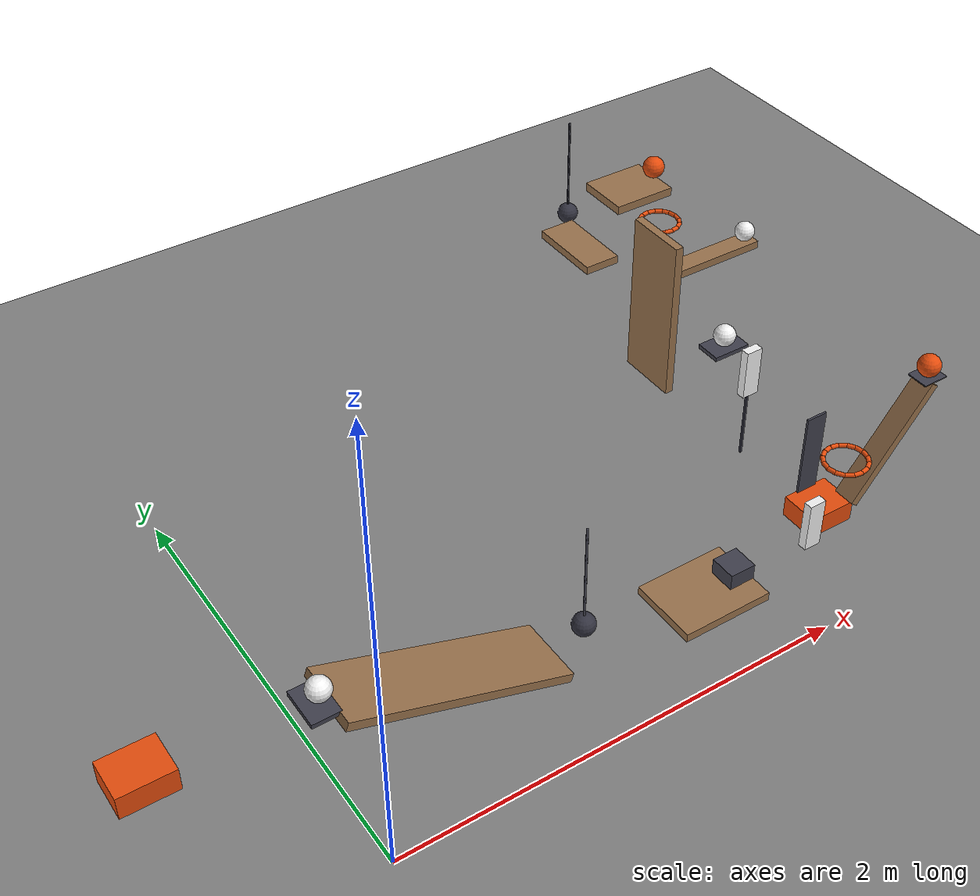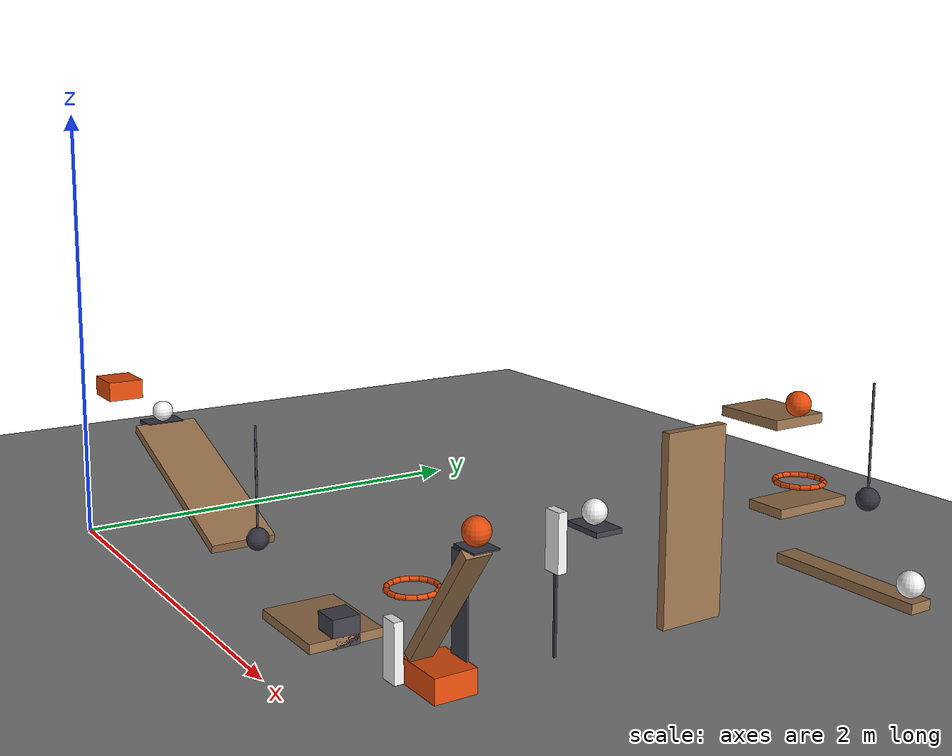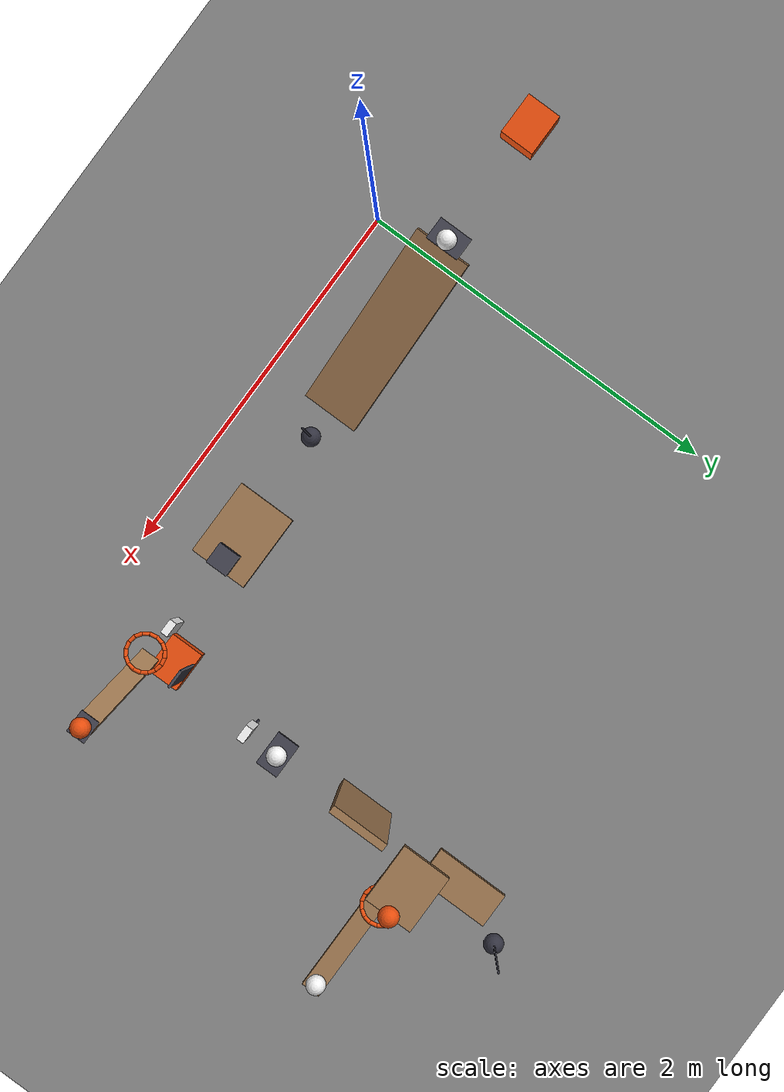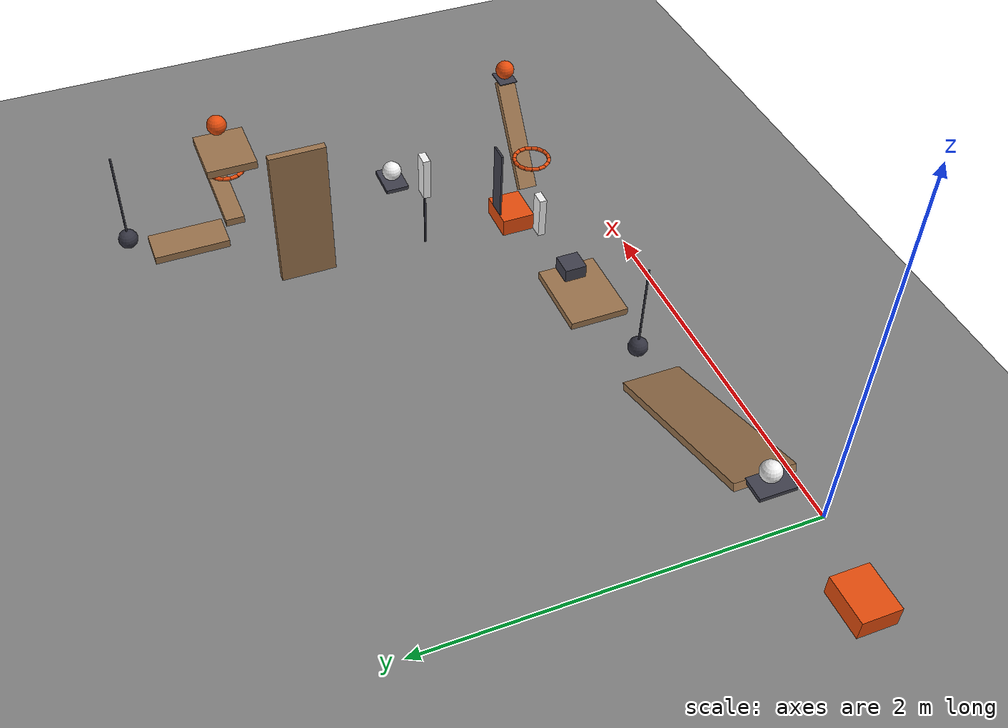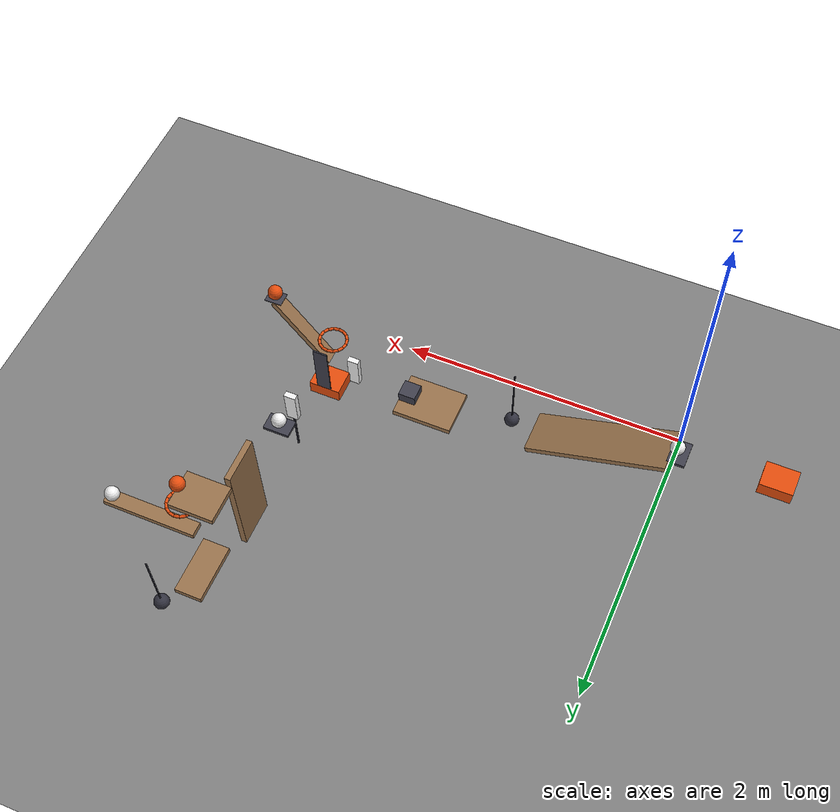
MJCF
<mujoco model="passive_chain_approximation">
  <compiler angle="radian"/>
  <option timestep="0.002"/>
  <worldbody>
    <geom name="floor" type="plane" size="8 8 0.1" friction="0.68 0 0"/>
    <body name="ramp1">
      <geom name="ramp1" type="box" pos="0.463006 0.4 0.302216" size="0.5 0.15 0.02" euler="0 0.349066 0" friction="0.68 0 0" solref="0.01 1" rgba="0.6 0.45 0.3 1"/>
    </body>
    <body name="ball1 waiting pad">
      <geom name="ball1 waiting pad" type="box" pos="-0.05 0.4 0.48202" size="0.06 0.09 0.01" friction="0.68 0 0" solref="0.01 1" rgba="0.25 0.25 0.3 1"/>
    </body>
    <body name="cart1" pos="-0.69 0.4 100.542">
      <joint name="cart1_guide" type="hinge" pos="0 0 0" axis="0 1 0" limited="true" range="-0.0174533 0" damping="2000"/>
      <geom name="cart1" type="box" pos="0 0 -100" size="0.11 0.09 0.05" mass="0.5" friction="0.68 0 0" solref="0.01 1" rgba="0.9 0.3 0.05 1"/>
    </body>
    <body name="cart1 spring pusher" pos="-0.605 0.4 10.542">
      <joint name="cart1_spring_hinge" type="hinge" pos="0 0 0" axis="0 1 0" limited="true" range="-0.0349066 0.0349066" stiffness="1800" springref="0" damping="0.04"/>
      <geom name="cart1 spring pusher" type="box" pos="0 0 -10" size="0.005 0.07 0.04" mass="0.001" friction="0.68 0 0" solref="0.01 1" rgba="0.2 0.2 0.25 1"/>
    </body>
    <body name="ball1" pos="-0.03 0.4 0.54202">
      <freejoint/>
      <geom name="ball1" type="sphere" pos="0 0 0" size="0.05" mass="0.2" condim="6" friction="0.68 0 0" solref="0.01 1" rgba="0.95 0.95 0.95 1"/>
    </body>
    <body name="pendulum1" pos="1.08969 0.4 0.7">
      <joint name="pendulum1_hinge" type="hinge" pos="0 0 0" axis="0 1 0" limited="true" range="-0.698132 0" damping="0.04"/>
      <geom name="pendulum1" type="sphere" pos="0 0 -0.5" size="0.05" mass="0.33" friction="0.68 0 0" solref="0.01 1" rgba="0.2 0.2 0.25 1"/>
      <geom name="pendulum1 rod" type="capsule" size="0.005" fromto="0 0 0 0 0 -0.45" mass="0.02" friction="0.68 0 0" solref="0.01 1" rgba="0.25 0.25 0.3 1"/>
    </body>
    <body name="door1" pos="1.48109 0.4 0.025">
      <joint name="door1_hinge" type="hinge" pos="0 0 0" axis="0 1 0" limited="true" range="-1.5708 -0.349066" damping="0.04"/>
      <geom name="door1" type="box" pos="0.21 0 0" size="0.21 0.16 0.02" mass="0.45" friction="0.68 0 0" solref="0.01 1" rgba="0.6 0.45 0.3 1"/>
    </body>
    <body name="block1" pos="1.84109 0.4 0.06">
      <freejoint/>
      <geom name="block1" type="box" pos="0 0 0" size="0.06 0.06 0.06" mass="0.35" friction="0.68 0 0" solref="0.01 1" rgba="0.25 0.25 0.3 1"/>
    </body>
    <body name="domino1" pos="2.26109 0.4 0.12">
      <freejoint/>
      <geom name="domino1" type="box" pos="0 0 0" size="0.04 0.02 0.12" mass="0.25" friction="0.68 0 0" solref="0.01 1" rgba="0.95 0.95 0.95 1"/>
    </body>
    <body name="lever1" pos="2.62109 0.4 0.41">
      <joint name="lever1_hinge" type="hinge" pos="0 0 0" axis="0 1 0" limited="true" range="-0.785398 0" damping="0.04"/>
      <geom name="lever1" type="box" pos="-4.44089e-16 0 5.55112e-17" size="0.3 0.05 0.02" euler="0 -0.927295 0" mass="0.499" friction="0.68 0 0" solref="0.01 1" rgba="0.6 0.45 0.3 1"/>
      <geom name="lever1 launch pad" type="box" pos="0.18 0 0.2575" size="0.06 0.05 0.0025" mass="0.001" friction="0.68 0 0" solref="0.01 1" rgba="0.25 0.25 0.3 1"/>
    </body>
    <body name="ball2" pos="2.80109 0.4 0.72">
      <freejoint/>
      <geom name="ball2" type="sphere" pos="0 0 0" size="0.05" mass="0.2" condim="6" friction="0.68 0 0" solref="0.01 1" rgba="0.9 0.3 0.05 1"/>
    </body>
    <body name="ring1">
      <geom name="ring1_00" type="capsule" size="0.01" fromto="2.49609 0.4 0.4 2.48885 0.436355 0.4" friction="0.68 0 0" solref="0.01 1" rgba="0.9 0.3 0.05 1"/>
      <geom name="ring1_01" type="capsule" size="0.01" fromto="2.48885 0.436355 0.4 2.46826 0.467175 0.4" friction="0.68 0 0" solref="0.01 1" rgba="0.9 0.3 0.05 1"/>
      <geom name="ring1_02" type="capsule" size="0.01" fromto="2.46826 0.467175 0.4 2.43744 0.487769 0.4" friction="0.68 0 0" solref="0.01 1" rgba="0.9 0.3 0.05 1"/>
      <geom name="ring1_03" type="capsule" size="0.01" fromto="2.43744 0.487769 0.4 2.40109 0.495 0.4" friction="0.68 0 0" solref="0.01 1" rgba="0.9 0.3 0.05 1"/>
      <geom name="ring1_04" type="capsule" size="0.01" fromto="2.40109 0.495 0.4 2.36473 0.487769 0.4" friction="0.68 0 0" solref="0.01 1" rgba="0.9 0.3 0.05 1"/>
      <geom name="ring1_05" type="capsule" size="0.01" fromto="2.36473 0.487769 0.4 2.33391 0.467175 0.4" friction="0.68 0 0" solref="0.01 1" rgba="0.9 0.3 0.05 1"/>
      <geom name="ring1_06" type="capsule" size="0.01" fromto="2.33391 0.467175 0.4 2.31332 0.436355 0.4" friction="0.68 0 0" solref="0.01 1" rgba="0.9 0.3 0.05 1"/>
      <geom name="ring1_07" type="capsule" size="0.01" fromto="2.31332 0.436355 0.4 2.30609 0.4 0.4" friction="0.68 0 0" solref="0.01 1" rgba="0.9 0.3 0.05 1"/>
      <geom name="ring1_08" type="capsule" size="0.01" fromto="2.30609 0.4 0.4 2.31332 0.363645 0.4" friction="0.68 0 0" solref="0.01 1" rgba="0.9 0.3 0.05 1"/>
      <geom name="ring1_09" type="capsule" size="0.01" fromto="2.31332 0.363645 0.4 2.33391 0.332825 0.4" friction="0.68 0 0" solref="0.01 1" rgba="0.9 0.3 0.05 1"/>
      <geom name="ring1_10" type="capsule" size="0.01" fromto="2.33391 0.332825 0.4 2.36473 0.312231 0.4" friction="0.68 0 0" solref="0.01 1" rgba="0.9 0.3 0.05 1"/>
      <geom name="ring1_11" type="capsule" size="0.01" fromto="2.36473 0.312231 0.4 2.40109 0.305 0.4" friction="0.68 0 0" solref="0.01 1" rgba="0.9 0.3 0.05 1"/>
      <geom name="ring1_12" type="capsule" size="0.01" fromto="2.40109 0.305 0.4 2.43744 0.312231 0.4" friction="0.68 0 0" solref="0.01 1" rgba="0.9 0.3 0.05 1"/>
      <geom name="ring1_13" type="capsule" size="0.01" fromto="2.43744 0.312231 0.4 2.46826 0.332825 0.4" friction="0.68 0 0" solref="0.01 1" rgba="0.9 0.3 0.05 1"/>
      <geom name="ring1_14" type="capsule" size="0.01" fromto="2.46826 0.332825 0.4 2.48885 0.363645 0.4" friction="0.68 0 0" solref="0.01 1" rgba="0.9 0.3 0.05 1"/>
      <geom name="ring1_15" type="capsule" size="0.01" fromto="2.48885 0.363645 0.4 2.49609 0.4 0.4" friction="0.68 0 0" solref="0.01 1" rgba="0.9 0.3 0.05 1"/>
    </body>
    <body name="cart2" pos="2.40109 0.51 100.05">
      <joint name="cart2_guide" type="hinge" pos="0 0 0" axis="1 0 0" limited="true" range="0 0.0174533" damping="2000"/>
      <geom name="cart2" type="box" pos="0 0 -100" size="0.11 0.09 0.05" mass="0.499" friction="0.68 0 0" solref="0.01 1" rgba="0.9 0.3 0.05 1"/>
      <geom name="cart2 contact mast" type="box" pos="0 0.085 -99.75" size="0.05 0.005 0.2" mass="0.001" friction="0.68 0 0" solref="0.01 1" rgba="0.25 0.25 0.3 1"/>
    </body>
    <body name="domino2 stand">
      <geom name="domino2 stand" type="box" pos="2.40109 1.02 0.17" size="0.005 0.005 0.17" friction="0.68 0 0" solref="0.01 1" rgba="0.2 0.2 0.25 1"/>
    </body>
    <body name="domino2" pos="2.40109 1.02 0.46">
      <freejoint/>
      <geom name="domino2" type="box" pos="0 0 0" size="0.04 0.02 0.12" mass="0.25" friction="0.68 0 0" solref="0.01 1" rgba="0.95 0.95 0.95 1"/>
    </body>
    <body name="ramp2">
      <geom name="ramp2" type="box" pos="2.40109 1.69301 0.302216" size="0.5 0.15 0.02" euler="0 1.5708 0" friction="0.68 0 0" solref="0.01 1" rgba="0.6 0.45 0.3 1"/>
    </body>
    <body name="ball3 waiting pad">
      <geom name="ball3 waiting pad" type="box" pos="2.40109 1.2 0.48202" size="0.09 0.06 0.01" friction="0.68 0 0" solref="0.01 1" rgba="0.25 0.25 0.3 1"/>
    </body>
    <body name="ball3" pos="2.40109 1.2 0.54202">
      <freejoint/>
      <geom name="ball3" type="sphere" pos="0 0 0" size="0.05" mass="0.2" condim="6" friction="0.68 0 0" solref="0.01 1" rgba="0.95 0.95 0.95 1"/>
    </body>
    <body name="flap1" pos="2.40109 2.28969 0.4">
      <joint name="flap1_hinge" type="hinge" pos="0 0 0" axis="1 0 0" limited="true" range="1.5708 2.61799" damping="0.04"/>
      <geom name="flap1" type="box" pos="0 0 0" size="0.09 0.19 0.02" mass="0.28" friction="0.68 0 0" solref="0.01 1" rgba="0.6 0.45 0.3 1"/>
    </body>
    <body name="pendulum2" pos="2.53109 2.5737 0.9">
      <joint name="pendulum2_hinge" type="hinge" pos="0 0 0" axis="1 0 0" limited="true" range="-1.5708 -0.907571" damping="0.04"/>
      <geom name="pendulum2" type="sphere" pos="0 0 -0.5" size="0.05" mass="0.33" friction="0.68 0 0" solref="0.01 1" rgba="0.2 0.2 0.25 1"/>
      <geom name="pendulum2 rod" type="capsule" size="0.005" fromto="0 0 0 0 0 -0.45" mass="0.02" friction="0.68 0 0" solref="0.01 1" rgba="0.25 0.25 0.3 1"/>
    </body>
    <body name="shelf1">
      <geom name="shelf1" type="box" pos="2.48109 2.03011 0.83" size="0.15 0.125 0.02" friction="0.68 0 0" solref="0.01 1" rgba="0.6 0.45 0.3 1"/>
    </body>
    <body name="ball4" pos="2.62109 2.03011 0.9">
      <freejoint/>
      <geom name="ball4" type="sphere" pos="0 0 0" size="0.05" mass="0.2" condim="6" friction="0.68 0 0" solref="0.01 1" rgba="0.9 0.3 0.05 1"/>
    </body>
    <body name="ring2">
      <geom name="ring2_00" type="capsule" size="0.01" fromto="2.75609 2.01011 0.6 2.74885 2.04646 0.6" friction="0.68 0 0" solref="0.01 1" rgba="0.9 0.3 0.05 1"/>
      <geom name="ring2_01" type="capsule" size="0.01" fromto="2.74885 2.04646 0.6 2.72826 2.07728 0.6" friction="0.68 0 0" solref="0.01 1" rgba="0.9 0.3 0.05 1"/>
      <geom name="ring2_02" type="capsule" size="0.01" fromto="2.72826 2.07728 0.6 2.69744 2.09788 0.6" friction="0.68 0 0" solref="0.01 1" rgba="0.9 0.3 0.05 1"/>
      <geom name="ring2_03" type="capsule" size="0.01" fromto="2.69744 2.09788 0.6 2.66109 2.10511 0.6" friction="0.68 0 0" solref="0.01 1" rgba="0.9 0.3 0.05 1"/>
      <geom name="ring2_04" type="capsule" size="0.01" fromto="2.66109 2.10511 0.6 2.62473 2.09788 0.6" friction="0.68 0 0" solref="0.01 1" rgba="0.9 0.3 0.05 1"/>
      <geom name="ring2_05" type="capsule" size="0.01" fromto="2.62473 2.09788 0.6 2.59391 2.07728 0.6" friction="0.68 0 0" solref="0.01 1" rgba="0.9 0.3 0.05 1"/>
      <geom name="ring2_06" type="capsule" size="0.01" fromto="2.59391 2.07728 0.6 2.57332 2.04646 0.6" friction="0.68 0 0" solref="0.01 1" rgba="0.9 0.3 0.05 1"/>
      <geom name="ring2_07" type="capsule" size="0.01" fromto="2.57332 2.04646 0.6 2.56609 2.01011 0.6" friction="0.68 0 0" solref="0.01 1" rgba="0.9 0.3 0.05 1"/>
      <geom name="ring2_08" type="capsule" size="0.01" fromto="2.56609 2.01011 0.6 2.57332 1.97375 0.6" friction="0.68 0 0" solref="0.01 1" rgba="0.9 0.3 0.05 1"/>
      <geom name="ring2_09" type="capsule" size="0.01" fromto="2.57332 1.97375 0.6 2.59391 1.94293 0.6" friction="0.68 0 0" solref="0.01 1" rgba="0.9 0.3 0.05 1"/>
      <geom name="ring2_10" type="capsule" size="0.01" fromto="2.59391 1.94293 0.6 2.62473 1.92234 0.6" friction="0.68 0 0" solref="0.01 1" rgba="0.9 0.3 0.05 1"/>
      <geom name="ring2_11" type="capsule" size="0.01" fromto="2.62473 1.92234 0.6 2.66109 1.91511 0.6" friction="0.68 0 0" solref="0.01 1" rgba="0.9 0.3 0.05 1"/>
      <geom name="ring2_12" type="capsule" size="0.01" fromto="2.66109 1.91511 0.6 2.69744 1.92234 0.6" friction="0.68 0 0" solref="0.01 1" rgba="0.9 0.3 0.05 1"/>
      <geom name="ring2_13" type="capsule" size="0.01" fromto="2.69744 1.92234 0.6 2.72826 1.94293 0.6" friction="0.68 0 0" solref="0.01 1" rgba="0.9 0.3 0.05 1"/>
      <geom name="ring2_14" type="capsule" size="0.01" fromto="2.72826 1.94293 0.6 2.74885 1.97375 0.6" friction="0.68 0 0" solref="0.01 1" rgba="0.9 0.3 0.05 1"/>
      <geom name="ring2_15" type="capsule" size="0.01" fromto="2.74885 1.97375 0.6 2.75609 2.01011 0.6" friction="0.68 0 0" solref="0.01 1" rgba="0.9 0.3 0.05 1"/>
    </body>
    <body name="seesaw1" pos="2.93609 2.01011 0.28">
      <joint name="seesaw1_hinge" type="hinge" pos="0 0 0" axis="0 1 0" limited="true" range="-0.733038 0" damping="0.04"/>
      <geom name="seesaw1" type="box" pos="0 0 0" size="0.325 0.05 0.02" mass="0.55" friction="0.68 0 0" solref="0.01 1" rgba="0.6 0.45 0.3 1"/>
    </body>
    <body name="ball5" pos="3.21109 2.01011 0.35">
      <freejoint/>
      <geom name="ball5" type="sphere" pos="0 0 0" size="0.05" mass="0.2" condim="6" friction="0.68 0 0" solref="0.01 1" rgba="0.95 0.95 0.95 1"/>
    </body>
  </worldbody>
  <keyframe>
    <key name="start" qpos="0 0.0200013 -0.03 0.4 0.54202 1 0 0 0 0 -1.5708 1.84109 0.4 0.06 1 0 0 0 2.26109 0.4 0.12 1 0 0 0 0 2.80109 0.4 0.72 1 0 0 0 0 2.40109 1.02 0.46 1 0 0 0 2.40109 1.2 0.54202 1 0 0 0 1.5708 -0.907571 2.62109 2.03011 0.9 1 0 0 0 0 3.21109 2.01011 0.35 1 0 0 0" qvel="0 0 0 0 0 0 0 0 0 0 0 0 0 0 0 0 0 0 0 0 0 0 0 0 0 0 0 0 0 0 0 0 0 0 0 0 0 0 0 0 0 0 0 0 0 0 0 0 0 0 0 0 0 0 0 0 0"/>
  </keyframe>
</mujoco>
